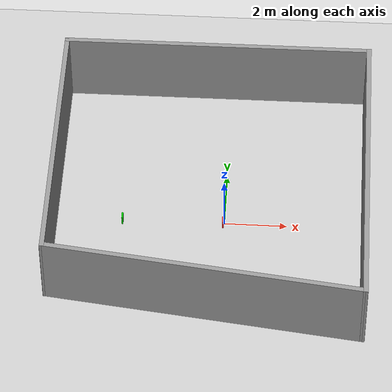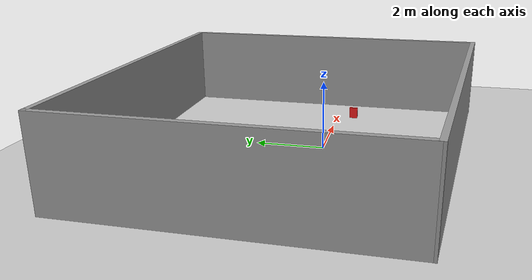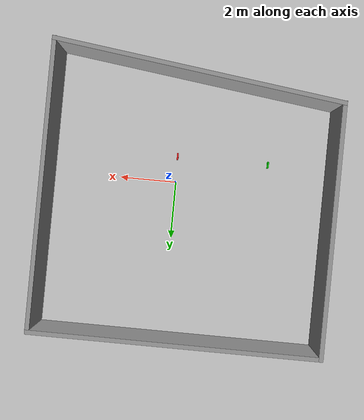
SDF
<sdf version="1.7">
 <world name="default">
  <physics type="ode">
   <ode>
    <solver>
     <type>quick</type>
     <iters>50</iters>
     <sor>1.4</sor>
     <use_dynamic_moi_rescaling>0</use_dynamic_moi_rescaling>
    </solver>
    <constraints>
     <cfm>0</cfm>
     <erp>0.2</erp>
     <contact_max_correcting_vel>100</contact_max_correcting_vel>
     <contact_surface_layer>0</contact_surface_layer>
    </constraints>
   </ode>
   <real_time_update_rate>1000</real_time_update_rate>
   <max_step_size>0.001</max_step_size>
   <real_time_factor>1</real_time_factor>
  </physics>
  <light name="sun" type="directional">
   <pose>0 0 10 0 -0 0</pose>
   <diffuse>0.8 0.8 0.8 1</diffuse>
   <specular>0.2 0.2 0.2 1</specular>
   <attenuation>
    <range>1000</range>
    <constant>0.9</constant>
    <linear>0.01</linear>
    <quadratic>0.001</quadratic>
   </attenuation>
   <direction>-0.5 0.1 -0.9</direction>
   <spot><inner_angle>0</inner_angle><outer_angle>0</outer_angle><falloff>0</falloff></spot>
  </light>
  <model name="ground_plane">
   <static>1</static>
   <link name="link">
    <collision name="collision">
     <geometry><plane><normal>0 0 1</normal><size>100 100</size></plane></geometry>
     <surface><friction><ode><mu>100</mu><mu2>50</mu2></ode></friction></surface>
    </collision>
    <visual name="visual">
     <cast_shadows>0</cast_shadows>
     <geometry><plane><normal>0 0 1</normal><size>100 100</size></plane></geometry>
     <material>
      <script><uri>file://media/materials/scripts/gazebo.material</uri><name>Gazebo/Grey</name></script>
     </material>
    </visual>
   </link>
  </model>
  <gravity>0 0 -9.81</gravity>
  <magnetic_field>6e-06 2.3e-05 -4.2e-05</magnetic_field>
  <atmosphere type="adiabatic"/>
  <scene><ambient>0.4 0.4 0.4 1</ambient><background>0.7 0.7 0.7 1</background><shadows>1</shadows></scene>
  <audio><device>default</device></audio>
  <spherical_coordinates>
   <surface_model>EARTH_WGS84</surface_model>
   <latitude_deg>0</latitude_deg>
   <longitude_deg>0</longitude_deg>
   <elevation>0</elevation>
   <heading_deg>0</heading_deg>
  </spherical_coordinates>
  <model name="fatihTerim">
   <pose>-0.483903 0.552687 0 0 -0 0</pose>
   <link name="Wall_10">
    <collision name="Wall_10_Collision">
     <geometry><box><size>10.079 0.15 2.5</size></box></geometry>
     <pose>0 0 1.25 0 -0 0</pose>
    </collision>
    <visual name="Wall_10_Visual">
     <pose>0 0 1.25 0 -0 0</pose>
     <geometry><box><size>10.079 0.15 2.5</size></box></geometry>
     <material>
      <script><uri>file://media/materials/scripts/gazebo.material</uri><name>Gazebo/Grey</name></script>
      <ambient>1 1 1 1</ambient>
     </material>
     <meta><layer>0</layer></meta>
    </visual>
    <pose>-0 -4.29558 0 0 -0 3.01536</pose>
   </link>
   <link name="Wall_11">
    <collision name="Wall_11_Collision">
     <geometry><box><size>8.75 0.15 2.5</size></box></geometry>
     <pose>0 0 1.25 0 -0 0</pose>
    </collision>
    <visual name="Wall_11_Visual">
     <pose>0 0 1.25 0 -0 0</pose>
     <geometry><box><size>8.75 0.15 2.5</size></box></geometry>
     <material>
      <script><uri>file://media/materials/scripts/gazebo.material</uri><name>Gazebo/Grey</name></script>
      <ambient>1 1 1 1</ambient>
     </material>
     <meta><layer>0</layer></meta>
    </visual>
    <pose>-4.925 0.629422 0 0 -0 1.5708</pose>
   </link>
   <link name="Wall_8">
    <collision name="Wall_8_Collision">
     <geometry><box><size>10 0.15 2.5</size></box></geometry>
     <pose>0 0 1.25 0 -0 0</pose>
    </collision>
    <visual name="Wall_8_Visual">
     <pose>0 0 1.25 0 -0 0</pose>
     <geometry><box><size>10 0.15 2.5</size></box></geometry>
     <material>
      <script><uri>file://media/materials/scripts/gazebo.material</uri><name>Gazebo/Grey</name></script>
      <ambient>1 1 1 1</ambient>
     </material>
     <meta><layer>0</layer></meta>
    </visual>
    <pose>-0 4.92942 0 0 -0 0</pose>
   </link>
   <link name="Wall_9">
    <collision name="Wall_9_Collision">
     <geometry><box><size>10 0.15 2.5</size></box></geometry>
     <pose>0 0 1.25 0 -0 0</pose>
    </collision>
    <visual name="Wall_9_Visual">
     <pose>0 0 1.25 0 -0 0</pose>
     <geometry><box><size>10 0.15 2.5</size></box></geometry>
     <material>
      <script><uri>file://media/materials/scripts/gazebo.material</uri><name>Gazebo/Grey</name></script>
      <ambient>1 1 1 1</ambient>
     </material>
     <meta><layer>0</layer></meta>
    </visual>
    <pose>4.925 0.004422 0 0 -0 -1.5708</pose>
   </link>
   <static>1</static>
  </model>
  <model name="book_box_1">
   <pose>-3.15 -0.872521 1.15 0 0 0</pose>
   <static>1</static>
   <link name="link">
    <collision name="collision"><geometry><box><size>0.05 0.22 0.30</size></box></geometry></collision>
    <visual name="visual">
     <geometry><box><size>0.05 0.22 0.30</size></box></geometry>
     <material>
      <ambient>0 0.8 0 1</ambient>
      <diffuse>0 0.8 0 1</diffuse>
      <specular>0.2 0.2 0.2 1</specular>
     </material>
    </visual>
   </link>
  </model>
  <model name="red_book_1">
   <pose>0.0 -0.872521 1.15 0 0 0</pose>
   <static>0</static>
   <link name="link">
    <inertial>
     <mass>0.25</mass>
     <inertia>
      <ixx>0.000041667</ixx>
      <ixy>0.000000</ixy>
      <ixz>0.000000</ixz>
      <iyy>0.000041667</iyy>
      <iyz>0.000000</iyz>
      <izz>0.000041667</izz>
     </inertia>
    </inertial>
    <collision name="collision">
     <geometry><box><size>0.05 0.22 0.30</size></box></geometry>
     <surface>
      <friction><ode><mu>60.0</mu><mu2>60.0</mu2></ode></friction>
      <contact>
       <ode><kp>1000000.0</kp><kd>100.0</kd><max_vel>1.0</max_vel><min_depth>0.0025</min_depth></ode>
      </contact>
     </surface>
    </collision>
    <visual name="visual">
     <geometry><box><size>0.05 0.22 0.30</size></box></geometry>
     <material>
      <ambient>0.9 0.1 0.1 1</ambient>
      <diffuse>0.9 0.1 0.1 1</diffuse>
      <specular>0.2 0.2 0.2 1</specular>
     </material>
    </visual>
   </link>
  </model>
 </world>
</sdf>
